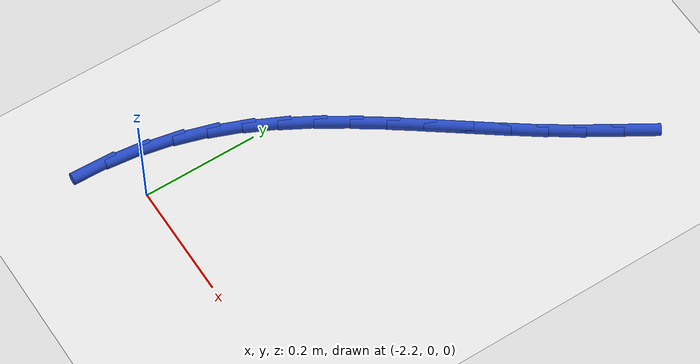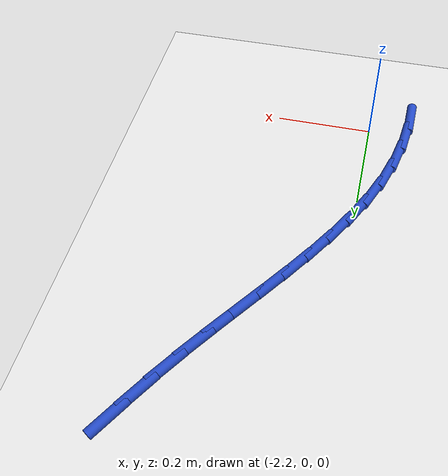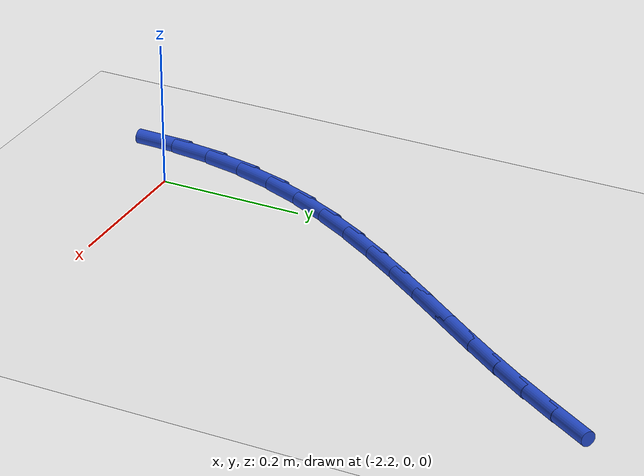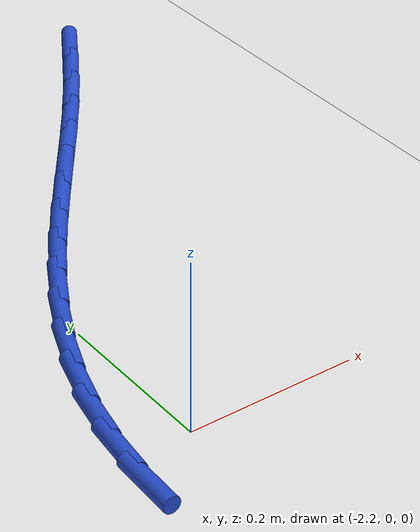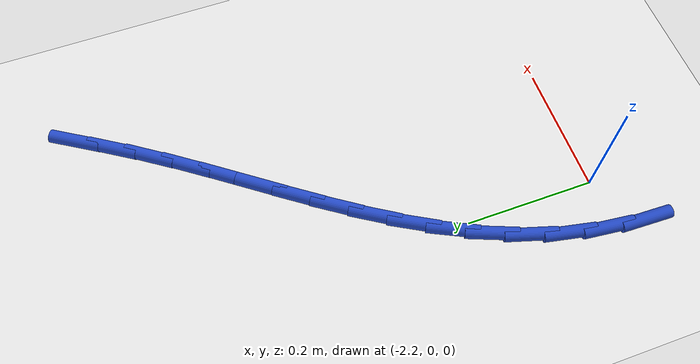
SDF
<sdf version="1.6">
 <world name="default">
  <model name="ground_plane">
   <static>1</static>
   <link name="link">
    <collision name="collision">
     <geometry><plane><normal>0 0 1</normal><size>100 100</size></plane></geometry>
     <surface><friction><ode><mu>100</mu><mu2>50</mu2></ode></friction></surface>
    </collision>
    <visual name="visual">
     <cast_shadows>0</cast_shadows>
     <geometry><plane><normal>0 0 1</normal><size>100 100</size></plane></geometry>
     <material>
      <script><uri>file://media/materials/scripts/gazebo.material</uri><name>Gazebo/WhiteGlow</name></script>
     </material>
    </visual>
   </link>
  </model>
  <model name="line">
   <link name="link_47">
    <pose>-1.8725790531517377 0.7184472967251695 0.01 0 1.57 1.0155047977682037</pose>
    <collision name="collision">
     <geometry><cylinder><radius>0.01</radius><length>0.08</length></cylinder></geometry>
    </collision>
    <visual name="visual">
     <material>
      <script><name>Gazebo/Blue</name><uri>file://media/materials/scripts/gazebo.material</uri></script>
     </material>
     <geometry><cylinder><radius>0.01</radius><length>0.08</length></cylinder></geometry>
    </visual>
   </link>
   <link name="link_48">
    <pose>-1.9041620787635756 0.6675405627255631 0.01 0 1.57 0.9989656688330922</pose>
    <collision name="collision">
     <geometry><cylinder><radius>0.01</radius><length>0.08</length></cylinder></geometry>
    </collision>
    <visual name="visual">
     <material>
      <script><name>Gazebo/Blue</name><uri>file://media/materials/scripts/gazebo.material</uri></script>
     </material>
     <geometry><cylinder><radius>0.01</radius><length>0.08</length></cylinder></geometry>
    </visual>
   </link>
   <link name="link_49">
    <pose>-1.936738485750418 0.6169210513998828 0.01 0 1.57 0.968098002295858</pose>
    <collision name="collision">
     <geometry><cylinder><radius>0.01</radius><length>0.08</length></cylinder></geometry>
    </collision>
    <visual name="visual">
     <material>
      <script><name>Gazebo/Blue</name><uri>file://media/materials/scripts/gazebo.material</uri></script>
     </material>
     <geometry><cylinder><radius>0.01</radius><length>0.08</length></cylinder></geometry>
    </visual>
   </link>
   <link name="link_50">
    <pose>-1.9708514630894962 0.5673458303767343 0.01 0 1.57 0.9462415086258347</pose>
    <collision name="collision">
     <geometry><cylinder><radius>0.01</radius><length>0.08</length></cylinder></geometry>
    </collision>
    <visual name="visual">
     <material>
      <script><name>Gazebo/Blue</name><uri>file://media/materials/scripts/gazebo.material</uri></script>
     </material>
     <geometry><cylinder><radius>0.01</radius><length>0.08</length></cylinder></geometry>
    </visual>
   </link>
   <link name="link_51">
    <pose>-2.0059820484297854 0.5186080278913322 0.01 0 1.57 0.9356449256254971</pose>
    <collision name="collision">
     <geometry><cylinder><radius>0.01</radius><length>0.08</length></cylinder></geometry>
    </collision>
    <visual name="visual">
     <material>
      <script><name>Gazebo/Blue</name><uri>file://media/materials/scripts/gazebo.material</uri></script>
     </material>
     <geometry><cylinder><radius>0.01</radius><length>0.08</length></cylinder></geometry>
    </visual>
   </link>
   <link name="link_52">
    <pose>-2.0415079019447275 0.4704069535125617 0.01 0 1.57 0.9363627235938885</pose>
    <collision name="collision">
     <geometry><cylinder><radius>0.01</radius><length>0.08</length></cylinder></geometry>
    </collision>
    <visual name="visual">
     <material>
      <script><name>Gazebo/Blue</name><uri>file://media/materials/scripts/gazebo.material</uri></script>
     </material>
     <geometry><cylinder><radius>0.01</radius><length>0.08</length></cylinder></geometry>
    </visual>
   </link>
   <link name="link_53">
    <pose>-2.0768066838077637 0.4224419168093085 0.01 0 1.57 0.9485857139658008</pose>
    <collision name="collision">
     <geometry><cylinder><radius>0.01</radius><length>0.08</length></cylinder></geometry>
    </collision>
    <visual name="visual">
     <material>
      <script><name>Gazebo/Blue</name><uri>file://media/materials/scripts/gazebo.material</uri></script>
     </material>
     <geometry><cylinder><radius>0.01</radius><length>0.08</length></cylinder></geometry>
    </visual>
   </link>
   <link name="link_54">
    <pose>-2.111256054192336 0.3744122273504574 0.01 0 1.57 0.9726454094489184</pose>
    <collision name="collision">
     <geometry><cylinder><radius>0.01</radius><length>0.08</length></cylinder></geometry>
    </collision>
    <visual name="visual">
     <material>
      <script><name>Gazebo/Blue</name><uri>file://media/materials/scripts/gazebo.material</uri></script>
     </material>
     <geometry><cylinder><radius>0.01</radius><length>0.08</length></cylinder></geometry>
    </visual>
   </link>
   <link name="link_55">
    <pose>-2.1442336732718847 0.32601719470489476 0.01 0 1.57 1.0089736319058293</pose>
    <collision name="collision">
     <geometry><cylinder><radius>0.01</radius><length>0.08</length></cylinder></geometry>
    </collision>
    <visual name="visual">
     <material>
      <script><name>Gazebo/Blue</name><uri>file://media/materials/scripts/gazebo.material</uri></script>
     </material>
     <geometry><cylinder><radius>0.01</radius><length>0.08</length></cylinder></geometry>
    </visual>
   </link>
   <link name="link_56">
    <pose>-2.1751172012198516 0.27695612844150497 0.01 0 1.57 1.058005102075081</pose>
    <collision name="collision">
     <geometry><cylinder><radius>0.01</radius><length>0.08</length></cylinder></geometry>
    </collision>
    <visual name="visual">
     <material>
      <script><name>Gazebo/Blue</name><uri>file://media/materials/scripts/gazebo.material</uri></script>
     </material>
     <geometry><cylinder><radius>0.01</radius><length>0.08</length></cylinder></geometry>
    </visual>
   </link>
   <link name="link_57">
    <pose>-2.20328429820968 0.22692833812917418 0.01 0 1.57 1.1200075965061802</pose>
    <collision name="collision">
     <geometry><cylinder><radius>0.01</radius><length>0.08</length></cylinder></geometry>
    </collision>
    <visual name="visual">
     <material>
      <script><name>Gazebo/Blue</name><uri>file://media/materials/scripts/gazebo.material</uri></script>
     </material>
     <geometry><cylinder><radius>0.01</radius><length>0.08</length></cylinder></geometry>
    </visual>
   </link>
   <link name="link_58">
    <pose>-2.22811262441481 0.1756331333367872 0.01 0 1.57 1.1948334145351098</pose>
    <collision name="collision">
     <geometry><cylinder><radius>0.01</radius><length>0.08</length></cylinder></geometry>
    </collision>
    <visual name="visual">
     <material>
      <script><name>Gazebo/Blue</name><uri>file://media/materials/scripts/gazebo.material</uri></script>
     </material>
     <geometry><cylinder><radius>0.01</radius><length>0.08</length></cylinder></geometry>
    </visual>
   </link>
   <link name="link_59">
    <pose>-2.2489798400086825 0.12276982363323008 0.01 0 1.57 1.2815679050087656</pose>
    <collision name="collision">
     <geometry><cylinder><radius>0.01</radius><length>0.08</length></cylinder></geometry>
    </collision>
    <visual name="visual">
     <material>
      <script><name>Gazebo/Blue</name><uri>file://media/materials/scripts/gazebo.material</uri></script>
     </material>
     <geometry><cylinder><radius>0.01</radius><length>0.08</length></cylinder></geometry>
    </visual>
   </link>
   <link name="link_60">
    <pose>-2.265265978217882 0.06803987487317037 0.01 0 1.57 1.3733332047155766</pose>
    <collision name="collision">
     <geometry><cylinder><radius>0.01</radius><length>0.08</length></cylinder></geometry>
    </collision>
    <visual name="visual">
     <material>
      <script><name>Gazebo/Blue</name><uri>file://media/materials/scripts/gazebo.material</uri></script>
     </material>
     <geometry><cylinder><radius>0.01</radius><length>0.08</length></cylinder></geometry>
    </visual>
   </link>
   <link name="link_61">
    <pose>-2.276603170281724 0.011373822943972012 0.01 0 1.57 1.4597870957042052</pose>
    <collision name="collision">
     <geometry><cylinder><radius>0.01</radius><length>0.08</length></cylinder></geometry>
    </collision>
    <visual name="visual">
     <material>
      <script><name>Gazebo/Blue</name><uri>file://media/materials/scripts/gazebo.material</uri></script>
     </material>
     <geometry><cylinder><radius>0.01</radius><length>0.08</length></cylinder></geometry>
    </visual>
   </link>
   <link name="link_62">
    <pose>-2.283095360111993 -0.04686908148605017 0.01 0 1.57 1.5404600482376485</pose>
    <collision name="collision">
     <geometry><cylinder><radius>0.01</radius><length>0.08</length></cylinder></geometry>
    </collision>
    <visual name="visual">
     <material>
      <script><name>Gazebo/Blue</name><uri>file://media/materials/scripts/gazebo.material</uri></script>
     </material>
     <geometry><cylinder><radius>0.01</radius><length>0.08</length></cylinder></geometry>
    </visual>
   </link>
  </model>
 </world>
</sdf>
